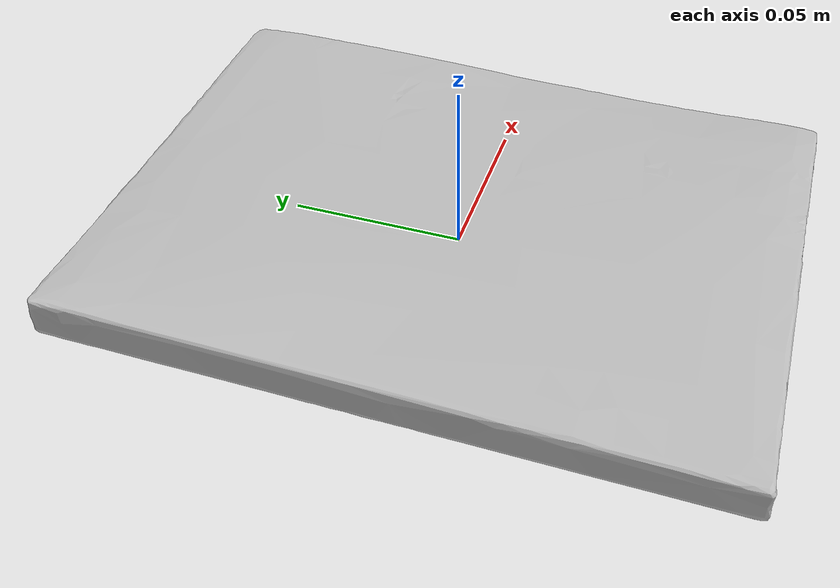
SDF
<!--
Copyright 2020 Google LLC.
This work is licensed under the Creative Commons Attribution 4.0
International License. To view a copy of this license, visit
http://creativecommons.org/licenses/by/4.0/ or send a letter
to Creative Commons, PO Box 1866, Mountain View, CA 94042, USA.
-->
<?xml version="1.0" ?>
<sdf version="1.6">
  <model name="Beyonc_Life_is_But_a_Dream_DVD">
    <link name="link_0">
      <visual name="visual">
        <geometry>
          <mesh>
            <uri>meshes/model.obj</uri>
          </mesh>
        </geometry>
      </visual>
      <collision name="collision_0">
        <geometry>
          <mesh>
            <uri>meshes/model.obj</uri>
          </mesh>
        </geometry>
      </collision>
    </link>
  </model>
</sdf>
